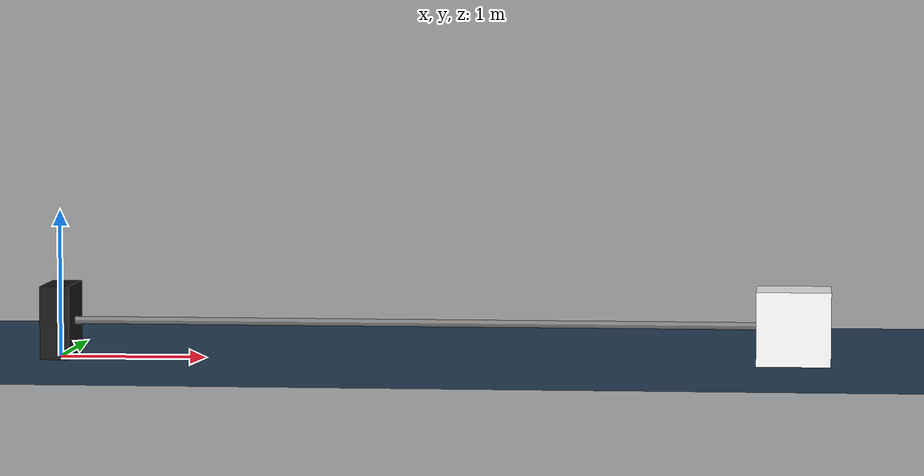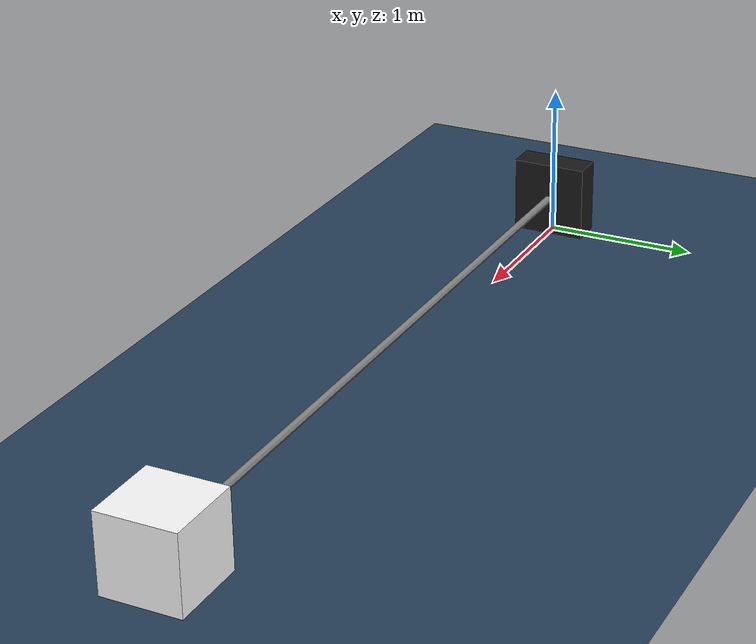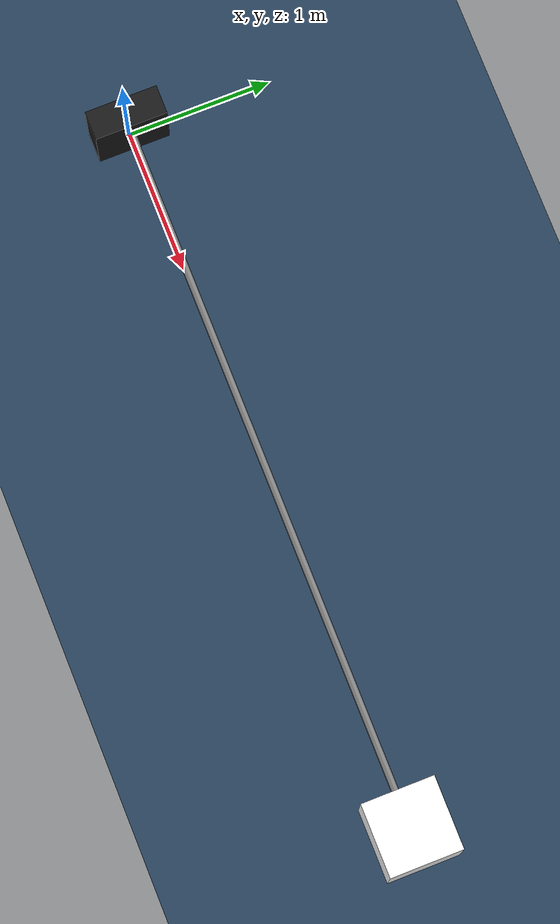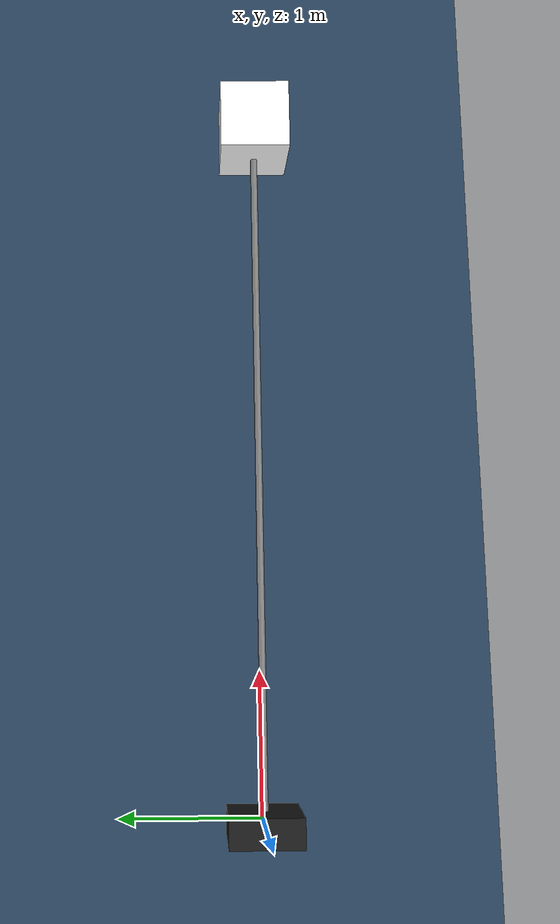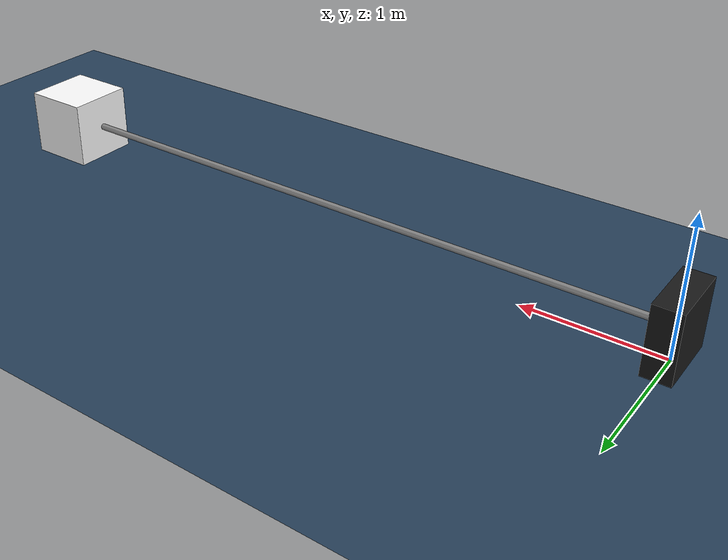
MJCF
<mujoco model="Mass_Spring_Damper">

	<asset>
		<texture name="grid" type="2d" builtin="checker" width="512" height="512" rgb1=".1 .2 .3" rgb2=".2 .3 .4"/>
		<material name="grid" texture="grid" texrepeat="1 1" texuniform="true" reflectance=".2"/>
	</asset>

	<worldbody>

		<geom type="box" size="0.10 0.25 0.25" pos="0.00 0.00 0.25" rgba="0.1 0.1 0.1 1"/>
		<site name="site_1" type="sphere" size="0.01" pos="0.10 0.00 0.25"/>

		<geom type="plane" size="0 0 0.1" material="grid"/>
		<light pos="0 0 20" dir="0 0 -1"/>

		<body name="block" pos="5.00 0.00 0.25">
			<joint name="prismatic" type="slide" axis="1 0 0" damping="15.0" stiffness="50.0"/>
			<geom type="box" size="0.25 0.25 0.25" rgba="1 1 1 1"/>
			<site name="site_2" type="sphere" size="0.01" pos="-0.25 0.00 0.00"/>

		</body>

	</worldbody>

	<actuator>
		<motor joint="prismatic" ctrlrange="-100.0 +100.0"/>
	</actuator>

	<tendon>
		<spatial
			limited="true" range="0.0 5.0" width="0.025" stiffness="100.0" springlength="1.0">
			<site site="site_1"/>
			<site site="site_2"/>
		</spatial>
	</tendon>

</mujoco>
